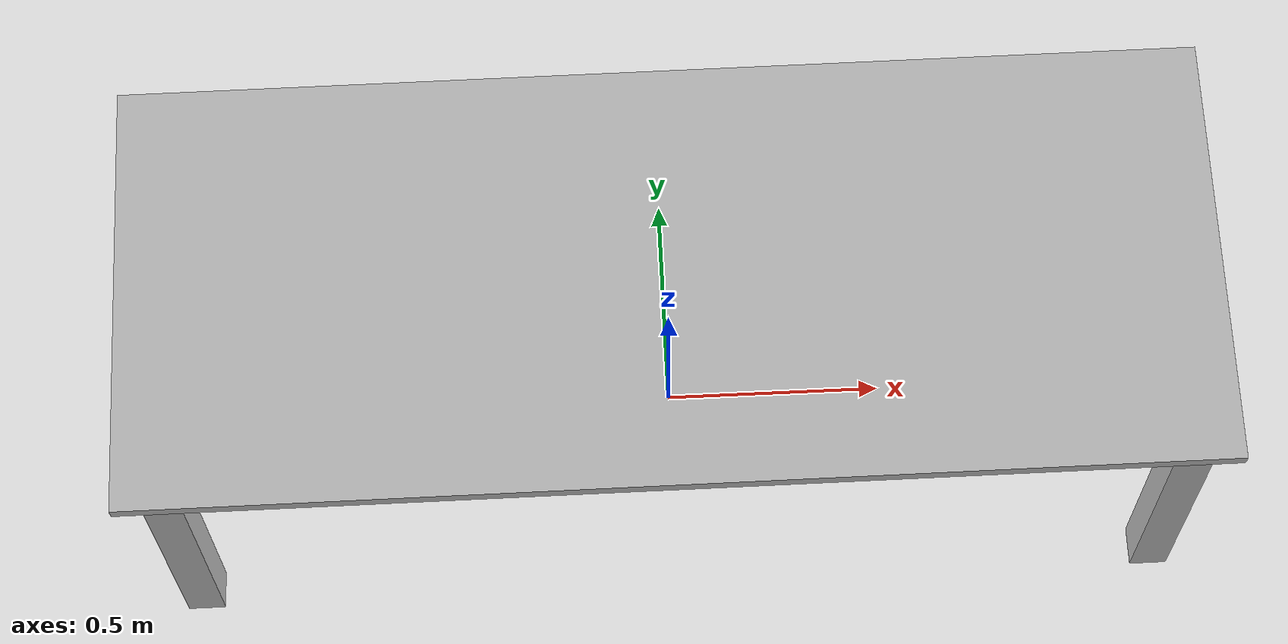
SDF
<?xml version="1.0"?>
<sdf version="1.6">
  <model name="reo2016/dinnertable">
    <link name="1_link">
      <collision name="1_col">
        <geometry>
          <box>
            <size>2.41 0.98 0.03</size>
          </box>
        </geometry>
      </collision>
      <visual name="1_vis">
        <geometry>
          <box>
            <size>2.41 0.98 0.03</size>
          </box>
        </geometry>
      </visual>
      <pose>0 0 0.745 0 0 0</pose>
    </link>
    <link name="2_link">
      <collision name="2_col">
        <geometry>
          <box>
            <size>0.085 0.085 0.73</size>
          </box>
        </geometry>
      </collision>
      <visual name="2_vis">
        <geometry>
          <box>
            <size>0.085 0.085 0.73</size>
          </box>
        </geometry>
      </visual>
      <pose>-1.1035 -0.4275 0.365 0 0 0</pose>
    </link>
    <link name="3_link">
      <collision name="3_col">
        <geometry>
          <box>
            <size>0.085 0.085 0.73</size>
          </box>
        </geometry>
      </collision>
      <visual name="3_vis">
        <geometry>
          <box>
            <size>0.085 0.085 0.73</size>
          </box>
        </geometry>
      </visual>
      <pose>1.1035 -0.4275 0.365 0 0 0</pose>
    </link>
    <link name="4_link">
      <collision name="4_col">
        <geometry>
          <box>
            <size>0.085 0.085 0.73</size>
          </box>
        </geometry>
      </collision>
      <visual name="4_vis">
        <geometry>
          <box>
            <size>0.085 0.085 0.73</size>
          </box>
        </geometry>
      </visual>
      <pose>-1.1035 0.4275 0.365 0 0 0</pose>
    </link>
    <link name="5_link">
      <collision name="5_col">
        <geometry>
          <box>
            <size>0.085 0.085 0.73</size>
          </box>
        </geometry>
      </collision>
      <visual name="5_vis">
        <geometry>
          <box>
            <size>0.085 0.085 0.73</size>
          </box>
        </geometry>
      </visual>
      <pose>1.1035 0.4275 0.365 0 0 0</pose>
    </link>
    <link name="on_top_of">
      <virtual_volume name="on_top_of_vv">
        <geometry>
          <box>
            <size>0.5 0.98 0.25</size>
          </box>
        </geometry>
        <pose>-0.95 0.0 0.925 0 0 0</pose>
      </virtual_volume>
    </link>
    <link name="in_front_of">
      <virtual_volume name="in_front_of_vv">
        <geometry>
          <box>
            <size>0.2 0.8 0.01</size>
          </box>
        </geometry>
        <pose>-1.9 0.0 0.005 0 0 0</pose>
      </virtual_volume>
    </link>
    <static>true</static>
  </model>
</sdf>
